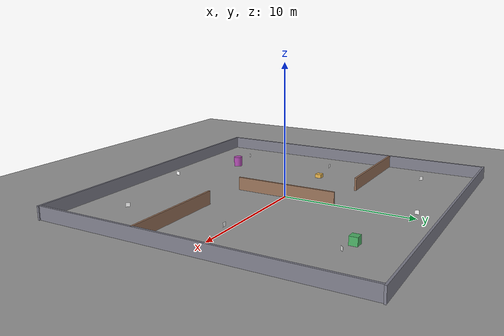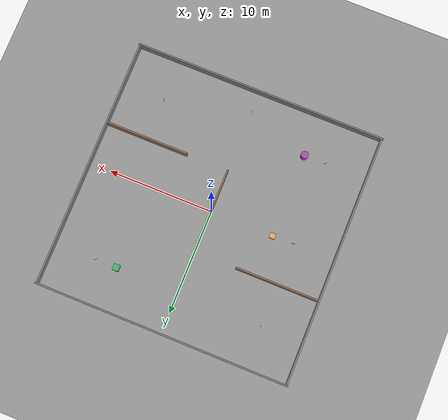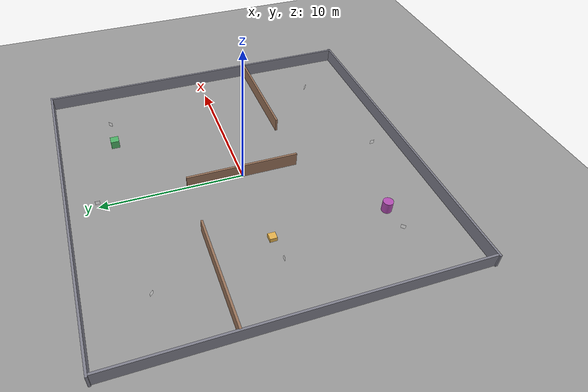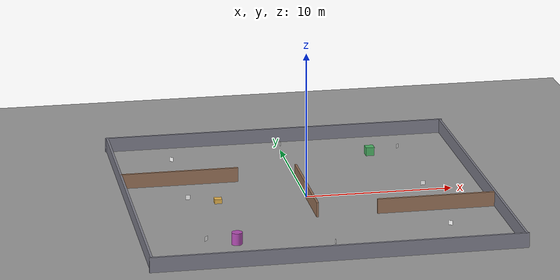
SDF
<?xml version="1.0" ?>
<sdf version="1.9">
  <world name="maze_world">

    <!-- Physics Configuration -->
    <physics name="1ms" type="ignored">
      <max_step_size>0.001</max_step_size>
      <real_time_factor>1</real_time_factor>
    </physics>

    <!-- Gazebo Harmonic plugins -->
    <plugin filename="gz-sim-physics-system" name="gz::sim::systems::Physics"/>
    <plugin filename="gz-sim-user-commands-system" name="gz::sim::systems::UserCommands"/>
    <plugin filename="gz-sim-scene-broadcaster-system" name="gz::sim::systems::SceneBroadcaster"/>
    <plugin filename="gz-sim-sensors-system" name="gz::sim::systems::Sensors">
      <render_engine>ogre2</render_engine>
    </plugin>
    <plugin filename="gz-sim-imu-system" name="gz::sim::systems::Imu"/>
    <plugin filename="gz-sim-contact-system" name="gz::sim::systems::Contact"/>

    <!-- Lighting -->
    <light type="directional" name="sun">
      <cast_shadows>true</cast_shadows>
      <pose>0 0 10 0 0 0</pose>
      <diffuse>0.8 0.8 0.8 1</diffuse>
      <specular>0.2 0.2 0.2 1</specular>
      <attenuation>
        <range>1000</range>
        <constant>0.9</constant>
        <linear>0.01</linear>
        <quadratic>0.001</quadratic>
      </attenuation>
      <direction>-0.5 0.1 -0.9</direction>
    </light>

    <!-- Ground Plane -->
    <model name="ground_plane">
      <static>true</static>
      <link name="link">
        <collision name="collision">
          <geometry>
            <plane>
              <normal>0 0 1</normal>
              <size>50 50</size>
            </plane>
          </geometry>
          <surface>
            <friction>
              <ode>
                <mu>100</mu>
                <mu2>50</mu2>
              </ode>
            </friction>
          </surface>
        </collision>
        <visual name="visual">
          <cast_shadows>false</cast_shadows>
          <geometry>
            <plane>
              <normal>0 0 1</normal>
              <size>50 50</size>
            </plane>
          </geometry>
          <material>
            <ambient>0.3 0.3 0.3 1</ambient>
            <diffuse>0.6 0.6 0.6 1</diffuse>
          </material>
        </visual>
      </link>
    </model>

    <!-- OPEN TRAINING MAZE                             -->
    <!-- 24m x 24m arena with very wide corridors       -->
    <!-- 8m spacing between walls                       -->
    <!-- 8m wide openings for easy navigation           -->
    <!-- Simple X/Y aligned walls only                  -->

    <!-- OUTER BOUNDARY WALLS -->

    <!-- North Wall -->
    <model name="wall_north">
      <static>true</static>
      <pose>0 12 0.5 0 0 0</pose>
      <link name="link">
        <collision name="collision">
          <geometry><box><size>24.3 0.15 1.0</size></box></geometry>
        </collision>
        <visual name="visual">
          <geometry><box><size>24.3 0.15 1.0</size></box></geometry>
          <material>
            <ambient>0.4 0.4 0.45 1</ambient>
            <diffuse>0.5 0.5 0.55 1</diffuse>
          </material>
        </visual>
      </link>
    </model>

    <!-- South Wall -->
    <model name="wall_south">
      <static>true</static>
      <pose>0 -12 0.5 0 0 0</pose>
      <link name="link">
        <collision name="collision">
          <geometry><box><size>24.3 0.15 1.0</size></box></geometry>
        </collision>
        <visual name="visual">
          <geometry><box><size>24.3 0.15 1.0</size></box></geometry>
          <material>
            <ambient>0.4 0.4 0.45 1</ambient>
            <diffuse>0.5 0.5 0.55 1</diffuse>
          </material>
        </visual>
      </link>
    </model>

    <!-- East Wall -->
    <model name="wall_east">
      <static>true</static>
      <pose>12 0 0.5 0 0 0</pose>
      <link name="link">
        <collision name="collision">
          <geometry><box><size>0.15 24 1.0</size></box></geometry>
        </collision>
        <visual name="visual">
          <geometry><box><size>0.15 24 1.0</size></box></geometry>
          <material>
            <ambient>0.4 0.4 0.45 1</ambient>
            <diffuse>0.5 0.5 0.55 1</diffuse>
          </material>
        </visual>
      </link>
    </model>

    <!-- West Wall -->
    <model name="wall_west">
      <static>true</static>
      <pose>-12 0 0.5 0 0 0</pose>
      <link name="link">
        <collision name="collision">
          <geometry><box><size>0.15 24 1.0</size></box></geometry>
        </collision>
        <visual name="visual">
          <geometry><box><size>0.15 24 1.0</size></box></geometry>
          <material>
            <ambient>0.4 0.4 0.45 1</ambient>
            <diffuse>0.5 0.5 0.55 1</diffuse>
          </material>
        </visual>
      </link>
    </model>

    <!-- INTERNAL WALLS - Simple X/Y aligned           -->
    <!-- 8m segments with 8m gaps                       -->

    <!-- Upper horizontal wall (Y = 4) - left segment only, 8m gap on right -->
    <model name="wall_h_upper">
      <static>true</static>
      <pose>-8 4 0.5 0 0 0</pose>
      <link name="link">
        <collision name="collision">
          <geometry><box><size>8 0.15 1.0</size></box></geometry>
        </collision>
        <visual name="visual">
          <geometry><box><size>8 0.15 1.0</size></box></geometry>
          <material>
            <ambient>0.5 0.35 0.25 1</ambient>
            <diffuse>0.6 0.45 0.35 1</diffuse>
          </material>
        </visual>
      </link>
    </model>

    <!-- Lower horizontal wall (Y = -4) - right segment only, 8m gap on left -->
    <model name="wall_h_lower">
      <static>true</static>
      <pose>8 -4 0.5 0 0 0</pose>
      <link name="link">
        <collision name="collision">
          <geometry><box><size>8 0.15 1.0</size></box></geometry>
        </collision>
        <visual name="visual">
          <geometry><box><size>8 0.15 1.0</size></box></geometry>
          <material>
            <ambient>0.5 0.35 0.25 1</ambient>
            <diffuse>0.6 0.45 0.35 1</diffuse>
          </material>
        </visual>
      </link>
    </model>

    <!-- Center vertical wall (X = 0) - middle segment, 8m gaps top and bottom -->
    <model name="wall_v_center">
      <static>true</static>
      <pose>0 0 0.5 0 0 0</pose>
      <link name="link">
        <collision name="collision">
          <geometry><box><size>0.15 8 1.0</size></box></geometry>
        </collision>
        <visual name="visual">
          <geometry><box><size>0.15 8 1.0</size></box></geometry>
          <material>
            <ambient>0.5 0.35 0.25 1</ambient>
            <diffuse>0.6 0.45 0.35 1</diffuse>
          </material>
        </visual>
      </link>
    </model>

    <!-- OBSTACLES - Spread out for sensor testing      -->

    <!-- Box obstacle - upper right quadrant -->
    <model name="obstacle_box_01">
      <static>true</static>
      <pose>6 8 0.3 0 0 0</pose>
      <link name="link">
        <collision name="collision">
          <geometry><box><size>0.6 0.6 0.6</size></box></geometry>
        </collision>
        <visual name="visual">
          <geometry><box><size>0.6 0.6 0.6</size></box></geometry>
          <material>
            <ambient>0.2 0.6 0.3 1</ambient>
            <diffuse>0.3 0.7 0.4 1</diffuse>
          </material>
        </visual>
      </link>
    </model>

    <!-- Cylinder obstacle - lower left quadrant -->
    <model name="obstacle_cylinder_01">
      <static>true</static>
      <pose>-6 -8 0.4 0 0 0</pose>
      <link name="link">
        <collision name="collision">
          <geometry>
            <cylinder>
              <radius>0.35</radius>
              <length>0.8</length>
            </cylinder>
          </geometry>
        </collision>
        <visual name="visual">
          <geometry>
            <cylinder>
              <radius>0.35</radius>
              <length>0.8</length>
            </cylinder>
          </geometry>
          <material>
            <ambient>0.6 0.2 0.6 1</ambient>
            <diffuse>0.7 0.3 0.7 1</diffuse>
          </material>
        </visual>
      </link>
    </model>

    <!-- Low obstacle - center area -->
    <model name="obstacle_low_01">
      <static>true</static>
      <pose>-6 0 0.15 0 0 0</pose>
      <link name="link">
        <collision name="collision">
          <geometry><box><size>0.5 0.5 0.3</size></box></geometry>
        </collision>
        <visual name="visual">
          <geometry><box><size>0.5 0.5 0.3</size></box></geometry>
          <material>
            <ambient>0.8 0.6 0.2 1</ambient>
            <diffuse>0.9 0.7 0.3 1</diffuse>
          </material>
        </visual>
      </link>
    </model>

    <!-- APRILTAG STANDS - 8 tags in open areas         -->
    <!-- Note: AprilTag textures need to be configured  -->
    <!-- for Gazebo Harmonic separately                 -->

    <!-- AprilTag 0 - Upper left quadrant -->
    <model name="apriltag_0">
      <static>true</static>
      <pose>-8 8 0.5 1.5708 0 -0.785</pose>
      <link name="link">
        <collision name="tag_collision">
          <geometry><box><size>0.30 0.30 0.005</size></box></geometry>
        </collision>
        <visual name="tag_visual">
          <geometry><box><size>0.30 0.30 0.005</size></box></geometry>
          <material>
            <ambient>1 1 1 1</ambient>
            <diffuse>1 1 1 1</diffuse>
          </material>
        </visual>
      </link>
    </model>

    <!-- AprilTag 1 - Upper right quadrant -->
    <model name="apriltag_1">
      <static>true</static>
      <pose>8 8 0.5 1.5708 0 -2.356</pose>
      <link name="link">
        <collision name="tag_collision">
          <geometry><box><size>0.30 0.30 0.005</size></box></geometry>
        </collision>
        <visual name="tag_visual">
          <geometry><box><size>0.30 0.30 0.005</size></box></geometry>
          <material>
            <ambient>1 1 1 1</ambient>
            <diffuse>1 1 1 1</diffuse>
          </material>
        </visual>
      </link>
    </model>

    <!-- AprilTag 2 - Center left -->
    <model name="apriltag_2">
      <static>true</static>
      <pose>-8 0 0.5 1.5708 0 0</pose>
      <link name="link">
        <collision name="tag_collision">
          <geometry><box><size>0.30 0.30 0.005</size></box></geometry>
        </collision>
        <visual name="tag_visual">
          <geometry><box><size>0.30 0.30 0.005</size></box></geometry>
          <material>
            <ambient>1 1 1 1</ambient>
            <diffuse>1 1 1 1</diffuse>
          </material>
        </visual>
      </link>
    </model>

    <!-- AprilTag 3 - Center right -->
    <model name="apriltag_3">
      <static>true</static>
      <pose>8 0 0.5 1.5708 0 3.14159</pose>
      <link name="link">
        <collision name="tag_collision">
          <geometry><box><size>0.30 0.30 0.005</size></box></geometry>
        </collision>
        <visual name="tag_visual">
          <geometry><box><size>0.30 0.30 0.005</size></box></geometry>
          <material>
            <ambient>1 1 1 1</ambient>
            <diffuse>1 1 1 1</diffuse>
          </material>
        </visual>
      </link>
    </model>

    <!-- AprilTag 4 - Lower left quadrant -->
    <model name="apriltag_4">
      <static>true</static>
      <pose>-8 -8 0.5 1.5708 0 0.785</pose>
      <link name="link">
        <collision name="tag_collision">
          <geometry><box><size>0.30 0.30 0.005</size></box></geometry>
        </collision>
        <visual name="tag_visual">
          <geometry><box><size>0.30 0.30 0.005</size></box></geometry>
          <material>
            <ambient>1 1 1 1</ambient>
            <diffuse>1 1 1 1</diffuse>
          </material>
        </visual>
      </link>
    </model>

    <!-- AprilTag 5 - Lower right quadrant -->
    <model name="apriltag_5">
      <static>true</static>
      <pose>8 -8 0.5 1.5708 0 2.356</pose>
      <link name="link">
        <collision name="tag_collision">
          <geometry><box><size>0.30 0.30 0.005</size></box></geometry>
        </collision>
        <visual name="tag_visual">
          <geometry><box><size>0.30 0.30 0.005</size></box></geometry>
          <material>
            <ambient>1 1 1 1</ambient>
            <diffuse>1 1 1 1</diffuse>
          </material>
        </visual>
      </link>
    </model>

    <!-- AprilTag 6 - Top center -->
    <model name="apriltag_6">
      <static>true</static>
      <pose>0 10 0.5 1.5708 0 -1.5708</pose>
      <link name="link">
        <collision name="tag_collision">
          <geometry><box><size>0.30 0.30 0.005</size></box></geometry>
        </collision>
        <visual name="tag_visual">
          <geometry><box><size>0.30 0.30 0.005</size></box></geometry>
          <material>
            <ambient>1 1 1 1</ambient>
            <diffuse>1 1 1 1</diffuse>
          </material>
        </visual>
      </link>
    </model>

    <!-- AprilTag 7 - Bottom center -->
    <model name="apriltag_7">
      <static>true</static>
      <pose>0 -10 0.5 1.5708 0 1.5708</pose>
      <link name="link">
        <collision name="tag_collision">
          <geometry><box><size>0.30 0.30 0.005</size></box></geometry>
        </collision>
        <visual name="tag_visual">
          <geometry><box><size>0.30 0.30 0.005</size></box></geometry>
          <material>
            <ambient>1 1 1 1</ambient>
            <diffuse>1 1 1 1</diffuse>
          </material>
        </visual>
      </link>
    </model>

  </world>
</sdf>
